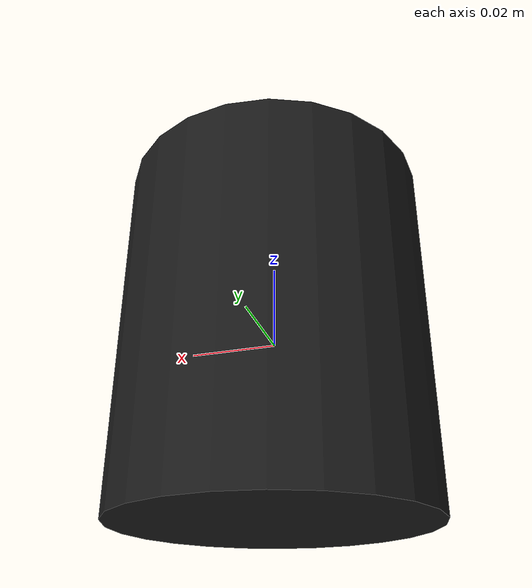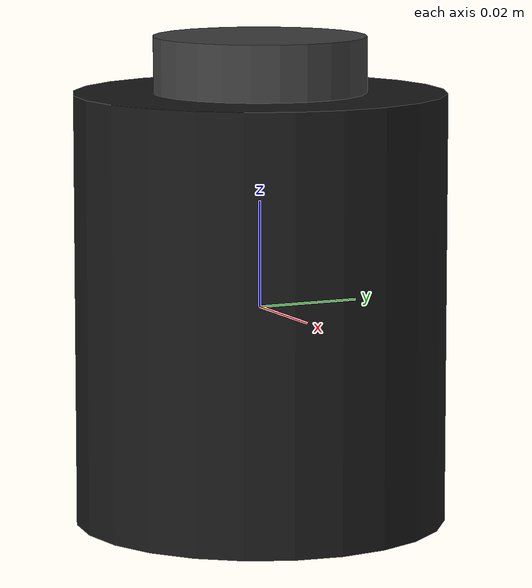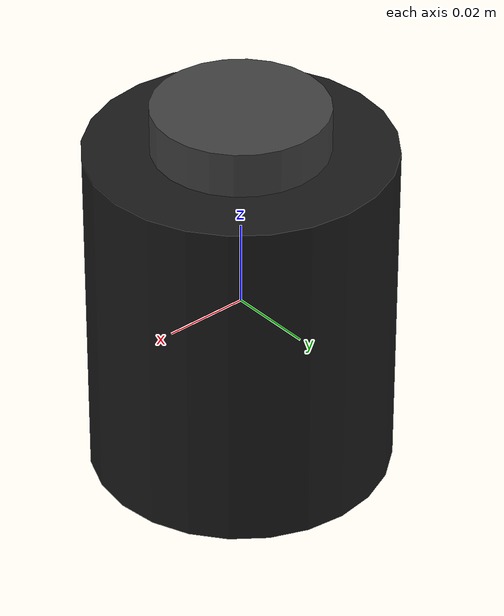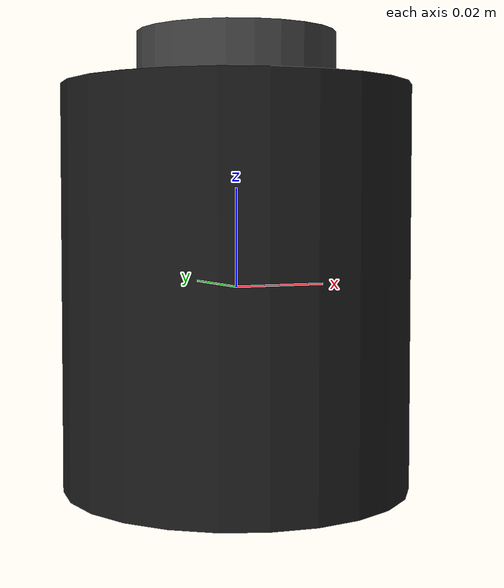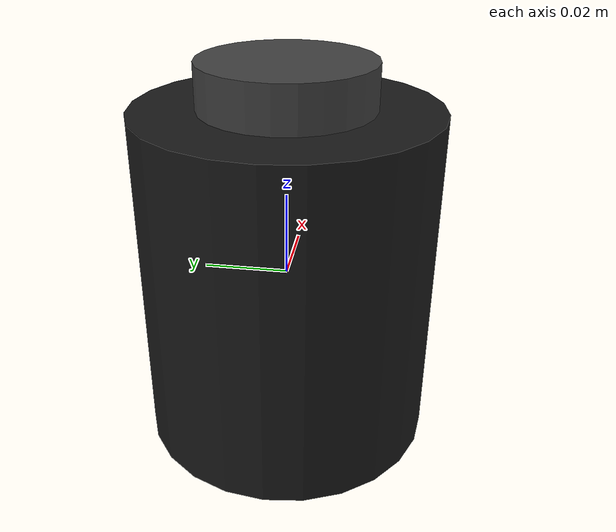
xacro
<?xml version="1.0"?>
<!-- Unitree L2 3D LiDAR - Ignition Gazebo Xacro Tanimi -->
<!-- Donanim Parametreleri:                              -->
<!--   Yatay FOV   : 360 derece, 720 ornek              -->
<!--   Dikey FOV   : 96 derece, 96 kanal                -->
<!--   Min Mesafe  : 0.05 m                             -->
<!--   Max Mesafe  : 30.0 m                             -->
<!--   Guncelleme  : 5.55 Hz                            -->
<!--   Gurultu     : Gaussian stddev=0.02 m             -->
<!-- ROS 2 Koprusu (ros_gz_bridge parameter):           -->
<!--   /roboboat/sensors/lidar/pointcloud               -->
<!--   @sensor_msgs/msg/PointCloud2                     -->
<!--   [ignition.msgs.PointCloudPacked                  -->
<!-- GateDetector uyumlulugu icin pointcloud_to_scan:   -->
<!--   ros2 run pointcloud_to_laserscan \               -->
<!--     pointcloud_to_laserscan_node                   -->
<!--     cloud_in => /roboboat/sensors/lidar/pointcloud -->
<!--     scan     => /scan                              -->
<!--     target_frame: unitree_l2_link                  -->

<robot xmlns:xacro="http://ros.org/wiki/xacro">

  <!-- Fiziksel govde linki -->
  <link name="unitree_l2_link">

    <!-- Gorsel: Ana govde silindiri (cap=69.9mm, yukseklik=81mm) -->
    <visual name="visual_unitree_l2_body">
      <origin xyz="0.0 0.0 0.0" rpy="0 0 0"/>
      <geometry>
        <cylinder length="0.081" radius="0.035"/>
      </geometry>
      <material name="unitree_l2_black">
        <color rgba="0.1 0.1 0.1 1.0"/>
      </material>
    </visual>

    <!-- Gorsel: Ust kisim doner prizma -->
    <visual name="visual_unitree_l2_top">
      <origin xyz="0.0 0.0 0.045" rpy="0 0 0"/>
      <geometry>
        <cylinder length="0.012" radius="0.020"/>
      </geometry>
      <material name="unitree_l2_dark_grey">
        <color rgba="0.25 0.25 0.25 1.0"/>
      </material>
    </visual>

    <!-- Carpismo geometrisi -->
    <collision name="collision_unitree_l2">
      <origin xyz="0.0 0.0 0.0" rpy="0 0 0"/>
      <geometry>
        <cylinder length="0.090" radius="0.036"/>
      </geometry>
    </collision>

    <!-- Atalet: Kutup=0.196kg, r=0.035m, h=0.081m -->
    <inertial>
      <origin xyz="0.0 0.0 0.0" rpy="0 0 0"/>
      <mass value="0.196"/>
      <inertia
        ixx="0.0001672" ixy="0.0" ixz="0.0"
        iyy="0.0001672" iyz="0.0"
        izz="0.0001201"/>
    </inertial>

  </link>

  <!-- Ignition Gazebo gpu_lidar sensor tanimi -->
  <gazebo reference="unitree_l2_link">

    <sensor name="sensor_unitree_l2" type="gpu_lidar">

      <topic>/roboboat/sensors/lidar/pointcloud</topic>

      <!-- TF frame referansi -->
      <gz_frame_id>unitree_l2_link</gz_frame_id>

      <!-- Her zaman aktif -->
      <always_on>true</always_on>

      <!-- Ignition GUI gorsellestime -->
      <visualize>true</visualize>

      <!-- Unitree L2: 5.55 Hz guncelleme hizi -->
      <update_rate>5.55</update_rate>

      <ray>
        <scan>

          <!-- Yatay tarama: 360 derece tam cevre tarama -->
          <!-- 720 beam x 0.5 derece = 360 derece toplam -->
          <horizontal>
            <samples>720</samples>
            <resolution>1</resolution>
            <!-- -180 derece sol sinir -->
            <min_angle>-3.14159265358979</min_angle>
            <!-- +180 derece sag sinir -->
            <max_angle>3.14159265358979</max_angle>
          </horizontal>

          <!-- Dikey tarama: 96 kanal, simetrik +/-48 derece -->
          <!-- 96 kanal x 1 derece/kanal = 96 derece toplam -->
          <vertical>
            <samples>96</samples>
            <resolution>1</resolution>
            <!-- -48 derece asagi sinir -->
            <min_angle>-0.8377580409572781</min_angle>
            <!-- +48 derece yukari sinir -->
            <max_angle>0.8377580409572781</max_angle>
          </vertical>

        </scan>

        <range>
          <!-- Unitree L2 kor nokta siniri -->
          <min>0.05</min>
          <!-- Unitree L2 maksimum menzil -->
          <max>30.0</max>
          <!-- 1 mm hassasiyet -->
          <resolution>0.001</resolution>
        </range>

        <!-- Gaussian gurultu: Unitree L2 tipik +/- 2 cm hatasi -->
        <noise>
          <type>gaussian</type>
          <mean>0.0</mean>
          <stddev>0.02</stddev>
        </noise>

      </ray>

    </sensor>

  </gazebo>

</robot>
